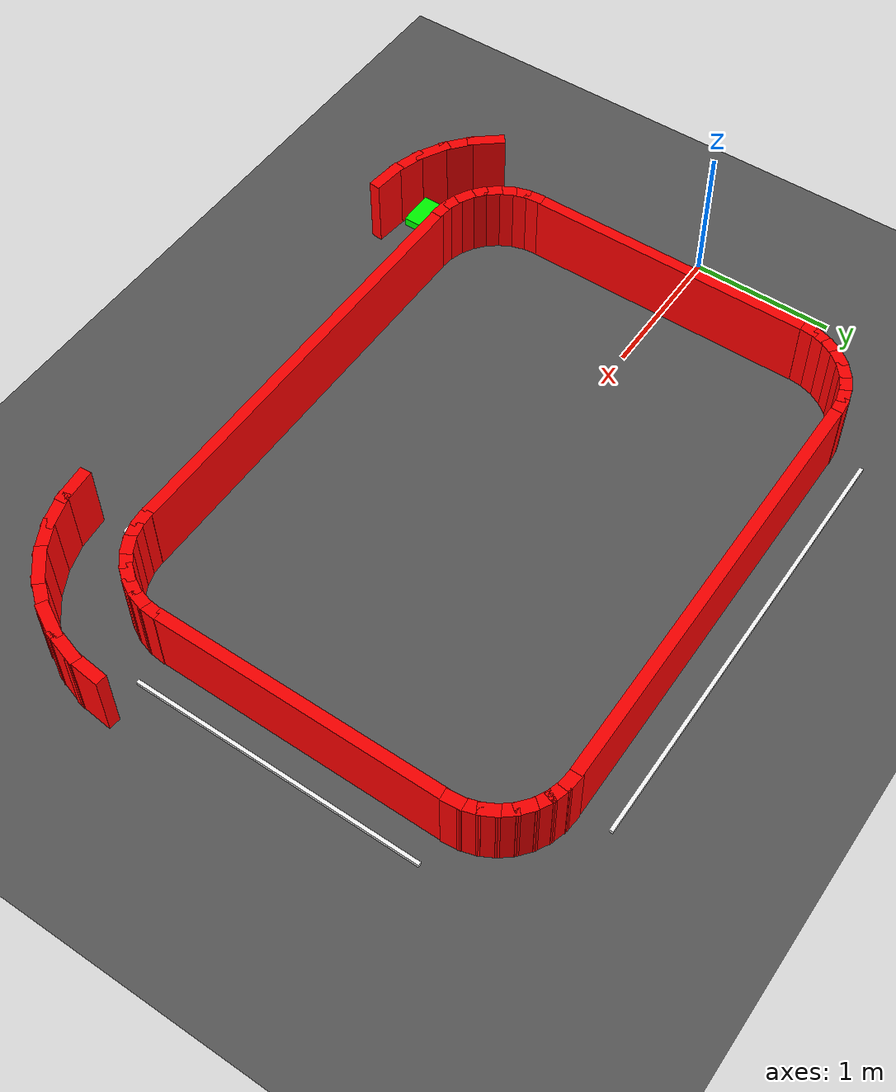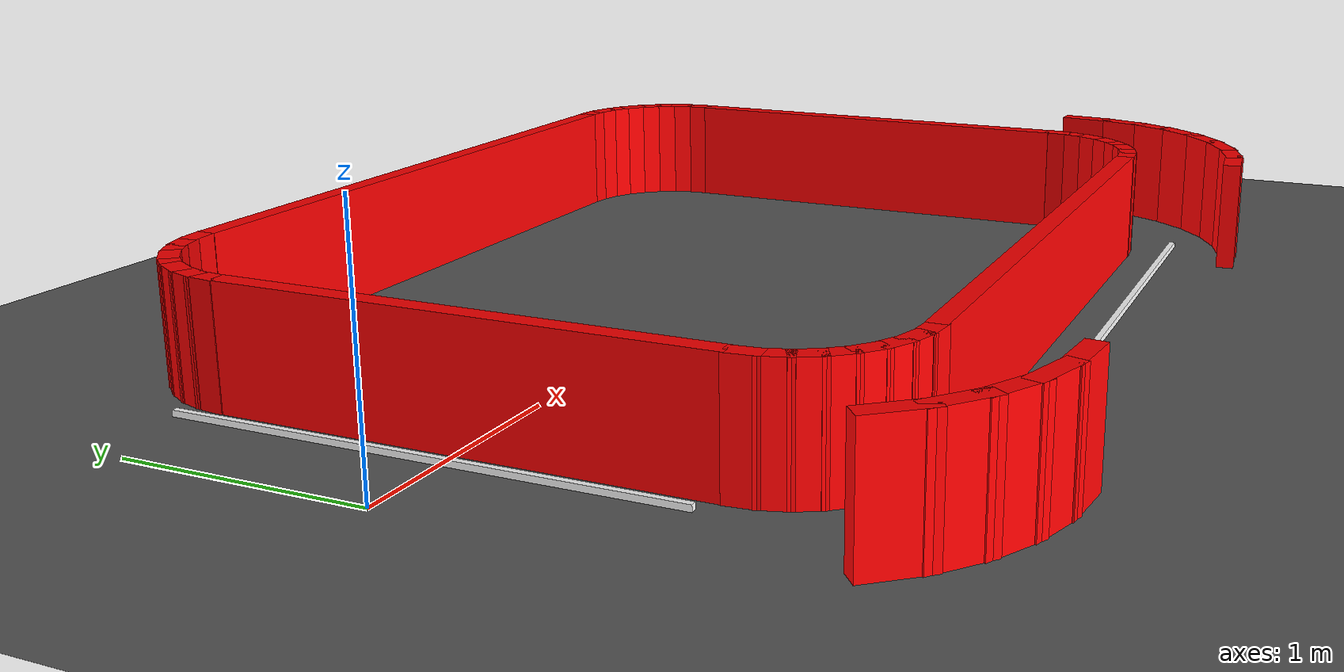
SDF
<sdf version="1.8">
 <world name="city_track_world">
  <model name="ground_plane">
   <static>true</static>
   <link name="link">
    <collision name="collision">
     <geometry><plane><normal>0 0 1</normal><size>100 100</size></plane></geometry>
    </collision>
    <visual name="visual">
     <geometry><plane><normal>0 0 1</normal><size>100 100</size></plane></geometry>
     <material><ambient>0.35 0.35 0.35 1</ambient><diffuse>0.35 0.35 0.35 1</diffuse></material>
    </visual>
   </link>
  </model>
  <model name="outer_bottom_left_wall_curve_4">
   <static>true</static>
   <link name="link">
    <pose>0.2270 -1.6344 0.2500 0 0 5.3996</pose>
    <collision name="collision"><geometry><box><size>0.2651 0.0800 0.5000</size></box></geometry></collision>
    <visual name="visual">
     <geometry><box><size>0.2651 0.0800 0.5000</size></box></geometry>
     <material><ambient>1 0 0 1</ambient><diffuse>1 0 0 1</diffuse></material>
    </visual>
   </link>
  </model>
  <model name="outer_bottom_left_wall_curve_5">
   <static>true</static>
   <link name="link">
    <pose>0.3656 -1.7730 0.2500 0 0 5.5960</pose>
    <collision name="collision"><geometry><box><size>0.2651 0.0800 0.5000</size></box></geometry></collision>
    <visual name="visual">
     <geometry><box><size>0.2651 0.0800 0.5000</size></box></geometry>
     <material><ambient>1 0 0 1</ambient><diffuse>1 0 0 1</diffuse></material>
    </visual>
   </link>
  </model>
  <model name="outer_bottom_left_wall_curve_6">
   <static>true</static>
   <link name="link">
    <pose>0.5286 -1.8819 0.2500 0 0 5.7923</pose>
    <collision name="collision"><geometry><box><size>0.2651 0.0800 0.5000</size></box></geometry></collision>
    <visual name="visual">
     <geometry><box><size>0.2651 0.0800 0.5000</size></box></geometry>
     <material><ambient>1 0 0 1</ambient><diffuse>1 0 0 1</diffuse></material>
    </visual>
   </link>
  </model>
  <model name="outer_bottom_left_wall_curve_7">
   <static>true</static>
   <link name="link">
    <pose>0.7097 -1.9569 0.2500 0 0 5.9887</pose>
    <collision name="collision"><geometry><box><size>0.2651 0.0800 0.5000</size></box></geometry></collision>
    <visual name="visual">
     <geometry><box><size>0.2651 0.0800 0.5000</size></box></geometry>
     <material><ambient>1 0 0 1</ambient><diffuse>1 0 0 1</diffuse></material>
    </visual>
   </link>
  </model>
  <model name="outer_bottom_left_wall_curve_8">
   <static>true</static>
   <link name="link">
    <pose>0.9020 -1.9952 0.2500 0 0 6.1850</pose>
    <collision name="collision"><geometry><box><size>0.2651 0.0800 0.5000</size></box></geometry></collision>
    <visual name="visual">
     <geometry><box><size>0.2651 0.0800 0.5000</size></box></geometry>
     <material><ambient>1 0 0 1</ambient><diffuse>1 0 0 1</diffuse></material>
    </visual>
   </link>
  </model>
  <model name="outer_bottom_right_wall_curve_1">
   <static>true</static>
   <link name="link">
    <pose>4.0980 -1.9952 0.2500 0 0 6.3814</pose>
    <collision name="collision"><geometry><box><size>0.2651 0.0800 0.5000</size></box></geometry></collision>
    <visual name="visual">
     <geometry><box><size>0.2651 0.0800 0.5000</size></box></geometry>
     <material><ambient>1 0 0 1</ambient><diffuse>1 0 0 1</diffuse></material>
    </visual>
   </link>
  </model>
  <model name="outer_bottom_right_wall_curve_2">
   <static>true</static>
   <link name="link">
    <pose>4.2903 -1.9569 0.2500 0 0 6.5777</pose>
    <collision name="collision"><geometry><box><size>0.2651 0.0800 0.5000</size></box></geometry></collision>
    <visual name="visual">
     <geometry><box><size>0.2651 0.0800 0.5000</size></box></geometry>
     <material><ambient>1 0 0 1</ambient><diffuse>1 0 0 1</diffuse></material>
    </visual>
   </link>
  </model>
  <model name="outer_bottom_right_wall_curve_3">
   <static>true</static>
   <link name="link">
    <pose>4.4714 -1.8819 0.2500 0 0 6.7741</pose>
    <collision name="collision"><geometry><box><size>0.2651 0.0800 0.5000</size></box></geometry></collision>
    <visual name="visual">
     <geometry><box><size>0.2651 0.0800 0.5000</size></box></geometry>
     <material><ambient>1 0 0 1</ambient><diffuse>1 0 0 1</diffuse></material>
    </visual>
   </link>
  </model>
  <model name="outer_bottom_right_wall_curve_4">
   <static>true</static>
   <link name="link">
    <pose>4.6344 -1.7730 0.2500 0 0 6.9704</pose>
    <collision name="collision"><geometry><box><size>0.2651 0.0800 0.5000</size></box></geometry></collision>
    <visual name="visual">
     <geometry><box><size>0.2651 0.0800 0.5000</size></box></geometry>
     <material><ambient>1 0 0 1</ambient><diffuse>1 0 0 1</diffuse></material>
    </visual>
   </link>
  </model>
  <model name="outer_bottom_right_wall_curve_5">
   <static>true</static>
   <link name="link">
    <pose>4.7730 -1.6344 0.2500 0 0 7.1668</pose>
    <collision name="collision"><geometry><box><size>0.2651 0.0800 0.5000</size></box></geometry></collision>
    <visual name="visual">
     <geometry><box><size>0.2651 0.0800 0.5000</size></box></geometry>
     <material><ambient>1 0 0 1</ambient><diffuse>1 0 0 1</diffuse></material>
    </visual>
   </link>
  </model>
  <model name="outer_bottom_right_wall_curve_6">
   <static>true</static>
   <link name="link">
    <pose>4.8819 -1.4714 0.2500 0 0 7.3631</pose>
    <collision name="collision"><geometry><box><size>0.2651 0.0800 0.5000</size></box></geometry></collision>
    <visual name="visual">
     <geometry><box><size>0.2651 0.0800 0.5000</size></box></geometry>
     <material><ambient>1 0 0 1</ambient><diffuse>1 0 0 1</diffuse></material>
    </visual>
   </link>
  </model>
  <model name="outer_bottom_right_wall_curve_7">
   <static>true</static>
   <link name="link">
    <pose>4.9569 -1.2903 0.2500 0 0 7.5595</pose>
    <collision name="collision"><geometry><box><size>0.2651 0.0800 0.5000</size></box></geometry></collision>
    <visual name="visual">
     <geometry><box><size>0.2651 0.0800 0.5000</size></box></geometry>
     <material><ambient>1 0 0 1</ambient><diffuse>1 0 0 1</diffuse></material>
    </visual>
   </link>
  </model>
  <model name="outer_bottom_right_wall_curve_8">
   <static>true</static>
   <link name="link">
    <pose>4.9952 -1.0980 0.2500 0 0 7.7558</pose>
    <collision name="collision"><geometry><box><size>0.2651 0.0800 0.5000</size></box></geometry></collision>
    <visual name="visual">
     <geometry><box><size>0.2651 0.0800 0.5000</size></box></geometry>
     <material><ambient>1 0 0 1</ambient><diffuse>1 0 0 1</diffuse></material>
    </visual>
   </link>
  </model>
  <model name="inner_top_wall">
   <static>true</static>
   <link name="link">
    <pose>2.5000 1.5000 0.2500 0 0 0.0000</pose>
    <collision name="collision"><geometry><box><size>3.0000 0.0800 0.5000</size></box></geometry></collision>
    <visual name="visual">
     <geometry><box><size>3.0000 0.0800 0.5000</size></box></geometry>
     <material><ambient>1 0 0 1</ambient><diffuse>1 0 0 1</diffuse></material>
    </visual>
   </link>
  </model>
  <model name="inner_bottom_wall">
   <static>true</static>
   <link name="link">
    <pose>2.5000 -1.5000 0.2500 0 0 0.0000</pose>
    <collision name="collision"><geometry><box><size>3.0000 0.0800 0.5000</size></box></geometry></collision>
    <visual name="visual">
     <geometry><box><size>3.0000 0.0800 0.5000</size></box></geometry>
     <material><ambient>1 0 0 1</ambient><diffuse>1 0 0 1</diffuse></material>
    </visual>
   </link>
  </model>
  <model name="inner_left_wall">
   <static>true</static>
   <link name="link">
    <pose>0.5000 0.0000 0.2500 0 0 1.5708</pose>
    <collision name="collision"><geometry><box><size>2.0000 0.0800 0.5000</size></box></geometry></collision>
    <visual name="visual">
     <geometry><box><size>2.0000 0.0800 0.5000</size></box></geometry>
     <material><ambient>1 0 0 1</ambient><diffuse>1 0 0 1</diffuse></material>
    </visual>
   </link>
  </model>
  <model name="inner_right_wall">
   <static>true</static>
   <link name="link">
    <pose>4.5000 0.0000 0.2500 0 0 1.5708</pose>
    <collision name="collision"><geometry><box><size>2.0000 0.0800 0.5000</size></box></geometry></collision>
    <visual name="visual">
     <geometry><box><size>2.0000 0.0800 0.5000</size></box></geometry>
     <material><ambient>1 0 0 1</ambient><diffuse>1 0 0 1</diffuse></material>
    </visual>
   </link>
  </model>
  <model name="inner_top_right_wall_curve_1">
   <static>true</static>
   <link name="link">
    <pose>4.4976 1.0490 0.2500 0 0 1.6690</pose>
    <collision name="collision"><geometry><box><size>0.1325 0.0800 0.5000</size></box></geometry></collision>
    <visual name="visual">
     <geometry><box><size>0.1325 0.0800 0.5000</size></box></geometry>
     <material><ambient>1 0 0 1</ambient><diffuse>1 0 0 1</diffuse></material>
    </visual>
   </link>
  </model>
  <model name="inner_top_right_wall_curve_2">
   <static>true</static>
   <link name="link">
    <pose>4.4785 1.1451 0.2500 0 0 1.8653</pose>
    <collision name="collision"><geometry><box><size>0.1325 0.0800 0.5000</size></box></geometry></collision>
    <visual name="visual">
     <geometry><box><size>0.1325 0.0800 0.5000</size></box></geometry>
     <material><ambient>1 0 0 1</ambient><diffuse>1 0 0 1</diffuse></material>
    </visual>
   </link>
  </model>
  <model name="inner_top_right_wall_curve_3">
   <static>true</static>
   <link name="link">
    <pose>4.4410 1.2357 0.2500 0 0 2.0617</pose>
    <collision name="collision"><geometry><box><size>0.1325 0.0800 0.5000</size></box></geometry></collision>
    <visual name="visual">
     <geometry><box><size>0.1325 0.0800 0.5000</size></box></geometry>
     <material><ambient>1 0 0 1</ambient><diffuse>1 0 0 1</diffuse></material>
    </visual>
   </link>
  </model>
  <model name="inner_top_right_wall_curve_4">
   <static>true</static>
   <link name="link">
    <pose>4.3865 1.3172 0.2500 0 0 2.2580</pose>
    <collision name="collision"><geometry><box><size>0.1325 0.0800 0.5000</size></box></geometry></collision>
    <visual name="visual">
     <geometry><box><size>0.1325 0.0800 0.5000</size></box></geometry>
     <material><ambient>1 0 0 1</ambient><diffuse>1 0 0 1</diffuse></material>
    </visual>
   </link>
  </model>
  <model name="inner_top_right_wall_curve_5">
   <static>true</static>
   <link name="link">
    <pose>4.3172 1.3865 0.2500 0 0 2.4544</pose>
    <collision name="collision"><geometry><box><size>0.1325 0.0800 0.5000</size></box></geometry></collision>
    <visual name="visual">
     <geometry><box><size>0.1325 0.0800 0.5000</size></box></geometry>
     <material><ambient>1 0 0 1</ambient><diffuse>1 0 0 1</diffuse></material>
    </visual>
   </link>
  </model>
  <model name="inner_top_right_wall_curve_6">
   <static>true</static>
   <link name="link">
    <pose>4.2357 1.4410 0.2500 0 0 2.6507</pose>
    <collision name="collision"><geometry><box><size>0.1325 0.0800 0.5000</size></box></geometry></collision>
    <visual name="visual">
     <geometry><box><size>0.1325 0.0800 0.5000</size></box></geometry>
     <material><ambient>1 0 0 1</ambient><diffuse>1 0 0 1</diffuse></material>
    </visual>
   </link>
  </model>
  <model name="inner_top_right_wall_curve_7">
   <static>true</static>
   <link name="link">
    <pose>4.1451 1.4785 0.2500 0 0 2.8471</pose>
    <collision name="collision"><geometry><box><size>0.1325 0.0800 0.5000</size></box></geometry></collision>
    <visual name="visual">
     <geometry><box><size>0.1325 0.0800 0.5000</size></box></geometry>
     <material><ambient>1 0 0 1</ambient><diffuse>1 0 0 1</diffuse></material>
    </visual>
   </link>
  </model>
  <model name="inner_top_right_wall_curve_8">
   <static>true</static>
   <link name="link">
    <pose>4.0490 1.4976 0.2500 0 0 3.0434</pose>
    <collision name="collision"><geometry><box><size>0.1325 0.0800 0.5000</size></box></geometry></collision>
    <visual name="visual">
     <geometry><box><size>0.1325 0.0800 0.5000</size></box></geometry>
     <material><ambient>1 0 0 1</ambient><diffuse>1 0 0 1</diffuse></material>
    </visual>
   </link>
  </model>
  <model name="inner_top_left_wall_curve_1">
   <static>true</static>
   <link name="link">
    <pose>0.9510 1.4976 0.2500 0 0 3.2398</pose>
    <collision name="collision"><geometry><box><size>0.1325 0.0800 0.5000</size></box></geometry></collision>
    <visual name="visual">
     <geometry><box><size>0.1325 0.0800 0.5000</size></box></geometry>
     <material><ambient>1 0 0 1</ambient><diffuse>1 0 0 1</diffuse></material>
    </visual>
   </link>
  </model>
  <model name="inner_top_left_wall_curve_2">
   <static>true</static>
   <link name="link">
    <pose>0.8549 1.4785 0.2500 0 0 3.4361</pose>
    <collision name="collision"><geometry><box><size>0.1325 0.0800 0.5000</size></box></geometry></collision>
    <visual name="visual">
     <geometry><box><size>0.1325 0.0800 0.5000</size></box></geometry>
     <material><ambient>1 0 0 1</ambient><diffuse>1 0 0 1</diffuse></material>
    </visual>
   </link>
  </model>
  <model name="inner_top_left_wall_curve_3">
   <static>true</static>
   <link name="link">
    <pose>0.7643 1.4410 0.2500 0 0 3.6325</pose>
    <collision name="collision"><geometry><box><size>0.1325 0.0800 0.5000</size></box></geometry></collision>
    <visual name="visual">
     <geometry><box><size>0.1325 0.0800 0.5000</size></box></geometry>
     <material><ambient>1 0 0 1</ambient><diffuse>1 0 0 1</diffuse></material>
    </visual>
   </link>
  </model>
  <model name="inner_top_left_wall_curve_4">
   <static>true</static>
   <link name="link">
    <pose>0.6828 1.3865 0.2500 0 0 3.8288</pose>
    <collision name="collision"><geometry><box><size>0.1325 0.0800 0.5000</size></box></geometry></collision>
    <visual name="visual">
     <geometry><box><size>0.1325 0.0800 0.5000</size></box></geometry>
     <material><ambient>1 0 0 1</ambient><diffuse>1 0 0 1</diffuse></material>
    </visual>
   </link>
  </model>
  <model name="inner_top_left_wall_curve_5">
   <static>true</static>
   <link name="link">
    <pose>0.6135 1.3172 0.2500 0 0 4.0252</pose>
    <collision name="collision"><geometry><box><size>0.1325 0.0800 0.5000</size></box></geometry></collision>
    <visual name="visual">
     <geometry><box><size>0.1325 0.0800 0.5000</size></box></geometry>
     <material><ambient>1 0 0 1</ambient><diffuse>1 0 0 1</diffuse></material>
    </visual>
   </link>
  </model>
  <model name="inner_top_left_wall_curve_6">
   <static>true</static>
   <link name="link">
    <pose>0.5590 1.2357 0.2500 0 0 4.2215</pose>
    <collision name="collision"><geometry><box><size>0.1325 0.0800 0.5000</size></box></geometry></collision>
    <visual name="visual">
     <geometry><box><size>0.1325 0.0800 0.5000</size></box></geometry>
     <material><ambient>1 0 0 1</ambient><diffuse>1 0 0 1</diffuse></material>
    </visual>
   </link>
  </model>
  <model name="inner_top_left_wall_curve_7">
   <static>true</static>
   <link name="link">
    <pose>0.5215 1.1451 0.2500 0 0 4.4179</pose>
    <collision name="collision"><geometry><box><size>0.1325 0.0800 0.5000</size></box></geometry></collision>
    <visual name="visual">
     <geometry><box><size>0.1325 0.0800 0.5000</size></box></geometry>
     <material><ambient>1 0 0 1</ambient><diffuse>1 0 0 1</diffuse></material>
    </visual>
   </link>
  </model>
  <model name="inner_top_left_wall_curve_8">
   <static>true</static>
   <link name="link">
    <pose>0.5024 1.0490 0.2500 0 0 4.6142</pose>
    <collision name="collision"><geometry><box><size>0.1325 0.0800 0.5000</size></box></geometry></collision>
    <visual name="visual">
     <geometry><box><size>0.1325 0.0800 0.5000</size></box></geometry>
     <material><ambient>1 0 0 1</ambient><diffuse>1 0 0 1</diffuse></material>
    </visual>
   </link>
  </model>
  <model name="inner_bottom_left_wall_curve_1">
   <static>true</static>
   <link name="link">
    <pose>0.5024 -1.0490 0.2500 0 0 4.8106</pose>
    <collision name="collision"><geometry><box><size>0.1325 0.0800 0.5000</size></box></geometry></collision>
    <visual name="visual">
     <geometry><box><size>0.1325 0.0800 0.5000</size></box></geometry>
     <material><ambient>1 0 0 1</ambient><diffuse>1 0 0 1</diffuse></material>
    </visual>
   </link>
  </model>
  <model name="inner_bottom_left_wall_curve_2">
   <static>true</static>
   <link name="link">
    <pose>0.5215 -1.1451 0.2500 0 0 5.0069</pose>
    <collision name="collision"><geometry><box><size>0.1325 0.0800 0.5000</size></box></geometry></collision>
    <visual name="visual">
     <geometry><box><size>0.1325 0.0800 0.5000</size></box></geometry>
     <material><ambient>1 0 0 1</ambient><diffuse>1 0 0 1</diffuse></material>
    </visual>
   </link>
  </model>
  <model name="inner_bottom_left_wall_curve_3">
   <static>true</static>
   <link name="link">
    <pose>0.5590 -1.2357 0.2500 0 0 5.2033</pose>
    <collision name="collision"><geometry><box><size>0.1325 0.0800 0.5000</size></box></geometry></collision>
    <visual name="visual">
     <geometry><box><size>0.1325 0.0800 0.5000</size></box></geometry>
     <material><ambient>1 0 0 1</ambient><diffuse>1 0 0 1</diffuse></material>
    </visual>
   </link>
  </model>
  <model name="inner_bottom_left_wall_curve_4">
   <static>true</static>
   <link name="link">
    <pose>0.6135 -1.3172 0.2500 0 0 5.3996</pose>
    <collision name="collision"><geometry><box><size>0.1325 0.0800 0.5000</size></box></geometry></collision>
    <visual name="visual">
     <geometry><box><size>0.1325 0.0800 0.5000</size></box></geometry>
     <material><ambient>1 0 0 1</ambient><diffuse>1 0 0 1</diffuse></material>
    </visual>
   </link>
  </model>
  <model name="inner_bottom_left_wall_curve_5">
   <static>true</static>
   <link name="link">
    <pose>0.6828 -1.3865 0.2500 0 0 5.5960</pose>
    <collision name="collision"><geometry><box><size>0.1325 0.0800 0.5000</size></box></geometry></collision>
    <visual name="visual">
     <geometry><box><size>0.1325 0.0800 0.5000</size></box></geometry>
     <material><ambient>1 0 0 1</ambient><diffuse>1 0 0 1</diffuse></material>
    </visual>
   </link>
  </model>
  <model name="inner_bottom_left_wall_curve_6">
   <static>true</static>
   <link name="link">
    <pose>0.7643 -1.4410 0.2500 0 0 5.7923</pose>
    <collision name="collision"><geometry><box><size>0.1325 0.0800 0.5000</size></box></geometry></collision>
    <visual name="visual">
     <geometry><box><size>0.1325 0.0800 0.5000</size></box></geometry>
     <material><ambient>1 0 0 1</ambient><diffuse>1 0 0 1</diffuse></material>
    </visual>
   </link>
  </model>
  <model name="inner_bottom_left_wall_curve_7">
   <static>true</static>
   <link name="link">
    <pose>0.8549 -1.4785 0.2500 0 0 5.9887</pose>
    <collision name="collision"><geometry><box><size>0.1325 0.0800 0.5000</size></box></geometry></collision>
    <visual name="visual">
     <geometry><box><size>0.1325 0.0800 0.5000</size></box></geometry>
     <material><ambient>1 0 0 1</ambient><diffuse>1 0 0 1</diffuse></material>
    </visual>
   </link>
  </model>
  <model name="inner_bottom_left_wall_curve_8">
   <static>true</static>
   <link name="link">
    <pose>0.9510 -1.4976 0.2500 0 0 6.1850</pose>
    <collision name="collision"><geometry><box><size>0.1325 0.0800 0.5000</size></box></geometry></collision>
    <visual name="visual">
     <geometry><box><size>0.1325 0.0800 0.5000</size></box></geometry>
     <material><ambient>1 0 0 1</ambient><diffuse>1 0 0 1</diffuse></material>
    </visual>
   </link>
  </model>
  <model name="inner_bottom_right_wall_curve_1">
   <static>true</static>
   <link name="link">
    <pose>4.0490 -1.4976 0.2500 0 0 6.3814</pose>
    <collision name="collision"><geometry><box><size>0.1325 0.0800 0.5000</size></box></geometry></collision>
    <visual name="visual">
     <geometry><box><size>0.1325 0.0800 0.5000</size></box></geometry>
     <material><ambient>1 0 0 1</ambient><diffuse>1 0 0 1</diffuse></material>
    </visual>
   </link>
  </model>
  <model name="inner_bottom_right_wall_curve_2">
   <static>true</static>
   <link name="link">
    <pose>4.1451 -1.4785 0.2500 0 0 6.5777</pose>
    <collision name="collision"><geometry><box><size>0.1325 0.0800 0.5000</size></box></geometry></collision>
    <visual name="visual">
     <geometry><box><size>0.1325 0.0800 0.5000</size></box></geometry>
     <material><ambient>1 0 0 1</ambient><diffuse>1 0 0 1</diffuse></material>
    </visual>
   </link>
  </model>
  <model name="inner_bottom_right_wall_curve_3">
   <static>true</static>
   <link name="link">
    <pose>4.2357 -1.4410 0.2500 0 0 6.7741</pose>
    <collision name="collision"><geometry><box><size>0.1325 0.0800 0.5000</size></box></geometry></collision>
    <visual name="visual">
     <geometry><box><size>0.1325 0.0800 0.5000</size></box></geometry>
     <material><ambient>1 0 0 1</ambient><diffuse>1 0 0 1</diffuse></material>
    </visual>
   </link>
  </model>
  <model name="inner_bottom_right_wall_curve_4">
   <static>true</static>
   <link name="link">
    <pose>4.3172 -1.3865 0.2500 0 0 6.9704</pose>
    <collision name="collision"><geometry><box><size>0.1325 0.0800 0.5000</size></box></geometry></collision>
    <visual name="visual">
     <geometry><box><size>0.1325 0.0800 0.5000</size></box></geometry>
     <material><ambient>1 0 0 1</ambient><diffuse>1 0 0 1</diffuse></material>
    </visual>
   </link>
  </model>
  <model name="inner_bottom_right_wall_curve_5">
   <static>true</static>
   <link name="link">
    <pose>4.3865 -1.3172 0.2500 0 0 7.1668</pose>
    <collision name="collision"><geometry><box><size>0.1325 0.0800 0.5000</size></box></geometry></collision>
    <visual name="visual">
     <geometry><box><size>0.1325 0.0800 0.5000</size></box></geometry>
     <material><ambient>1 0 0 1</ambient><diffuse>1 0 0 1</diffuse></material>
    </visual>
   </link>
  </model>
  <model name="inner_bottom_right_wall_curve_6">
   <static>true</static>
   <link name="link">
    <pose>4.4410 -1.2357 0.2500 0 0 7.3631</pose>
    <collision name="collision"><geometry><box><size>0.1325 0.0800 0.5000</size></box></geometry></collision>
    <visual name="visual">
     <geometry><box><size>0.1325 0.0800 0.5000</size></box></geometry>
     <material><ambient>1 0 0 1</ambient><diffuse>1 0 0 1</diffuse></material>
    </visual>
   </link>
  </model>
  <model name="inner_bottom_right_wall_curve_7">
   <static>true</static>
   <link name="link">
    <pose>4.4785 -1.1451 0.2500 0 0 7.5595</pose>
    <collision name="collision"><geometry><box><size>0.1325 0.0800 0.5000</size></box></geometry></collision>
    <visual name="visual">
     <geometry><box><size>0.1325 0.0800 0.5000</size></box></geometry>
     <material><ambient>1 0 0 1</ambient><diffuse>1 0 0 1</diffuse></material>
    </visual>
   </link>
  </model>
  <model name="inner_bottom_right_wall_curve_8">
   <static>true</static>
   <link name="link">
    <pose>4.4976 -1.0490 0.2500 0 0 7.7558</pose>
    <collision name="collision"><geometry><box><size>0.1325 0.0800 0.5000</size></box></geometry></collision>
    <visual name="visual">
     <geometry><box><size>0.1325 0.0800 0.5000</size></box></geometry>
     <material><ambient>1 0 0 1</ambient><diffuse>1 0 0 1</diffuse></material>
    </visual>
   </link>
  </model>
  <model name="top_center_line">
   <static>true</static>
   <link name="link">
    <pose>2.5000 1.7500 0.0800 0 0 0.0000</pose>
    <visual name="visual">
     <geometry><box><size>3.0000 0.0250 0.0250</size></box></geometry>
     <material><ambient>1 1 1 1</ambient><diffuse>1 1 1 1</diffuse></material>
    </visual>
   </link>
  </model>
  <model name="bottom_center_line">
   <static>true</static>
   <link name="link">
    <pose>2.5000 -1.7500 0.0800 0 0 0.0000</pose>
    <visual name="visual">
     <geometry><box><size>3.0000 0.0250 0.0250</size></box></geometry>
     <material><ambient>1 1 1 1</ambient><diffuse>1 1 1 1</diffuse></material>
    </visual>
   </link>
  </model>
  <model name="left_center_line">
   <static>true</static>
   <link name="link">
    <pose>0.2500 0.0000 0.0800 0 0 1.5708</pose>
    <visual name="visual">
     <geometry><box><size>2.0000 0.0250 0.0250</size></box></geometry>
     <material><ambient>1 1 1 1</ambient><diffuse>1 1 1 1</diffuse></material>
    </visual>
   </link>
  </model>
  <model name="right_center_line">
   <static>true</static>
   <link name="link">
    <pose>4.7500 0.0000 0.0800 0 0 1.5708</pose>
    <visual name="visual">
     <geometry><box><size>2.0000 0.0250 0.0250</size></box></geometry>
     <material><ambient>1 1 1 1</ambient><diffuse>1 1 1 1</diffuse></material>
    </visual>
   </link>
  </model>
  <model name="start_marker">
   <static>true</static>
   <link name="link">
    <pose>0.7500 -1.7500 0.1000 0 0 0.0000</pose>
    <visual name="visual">
     <geometry><box><size>0.2500 0.2500 0.0600</size></box></geometry>
     <material><ambient>0 1 0 1</ambient><diffuse>0 1 0 1</diffuse></material>
    </visual>
   </link>
  </model>
 </world>
</sdf>
